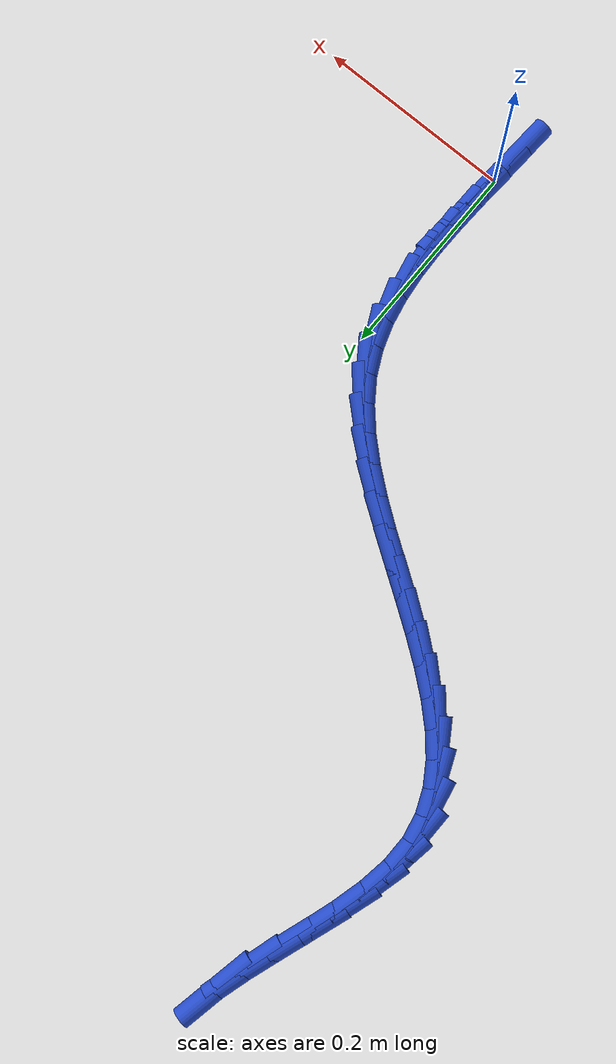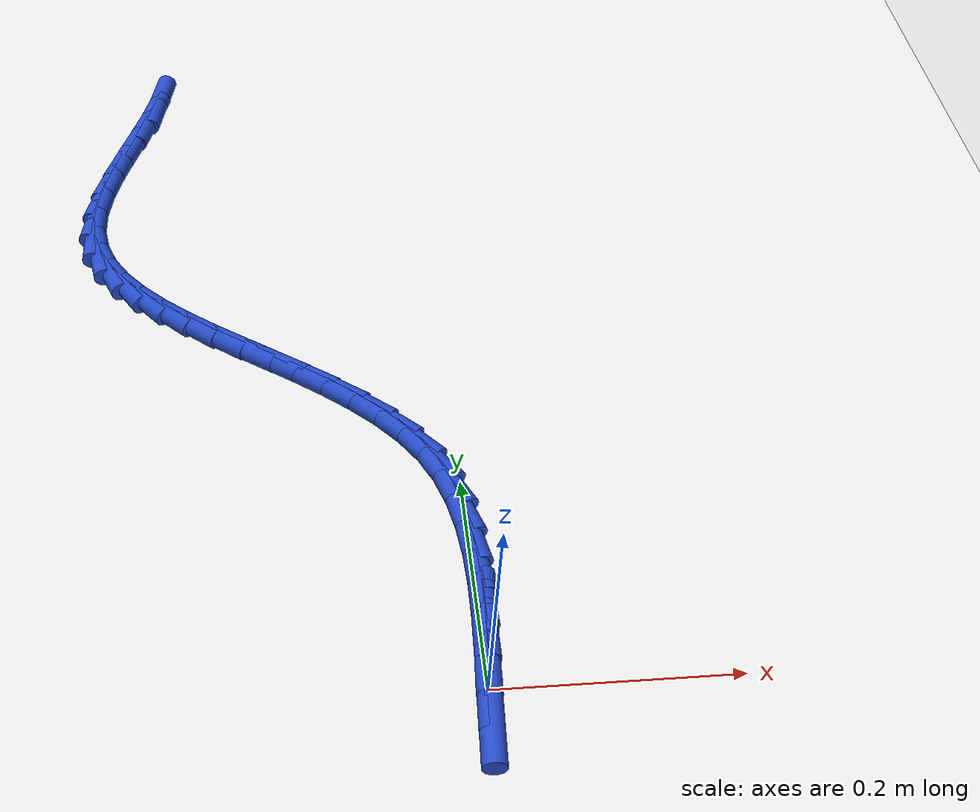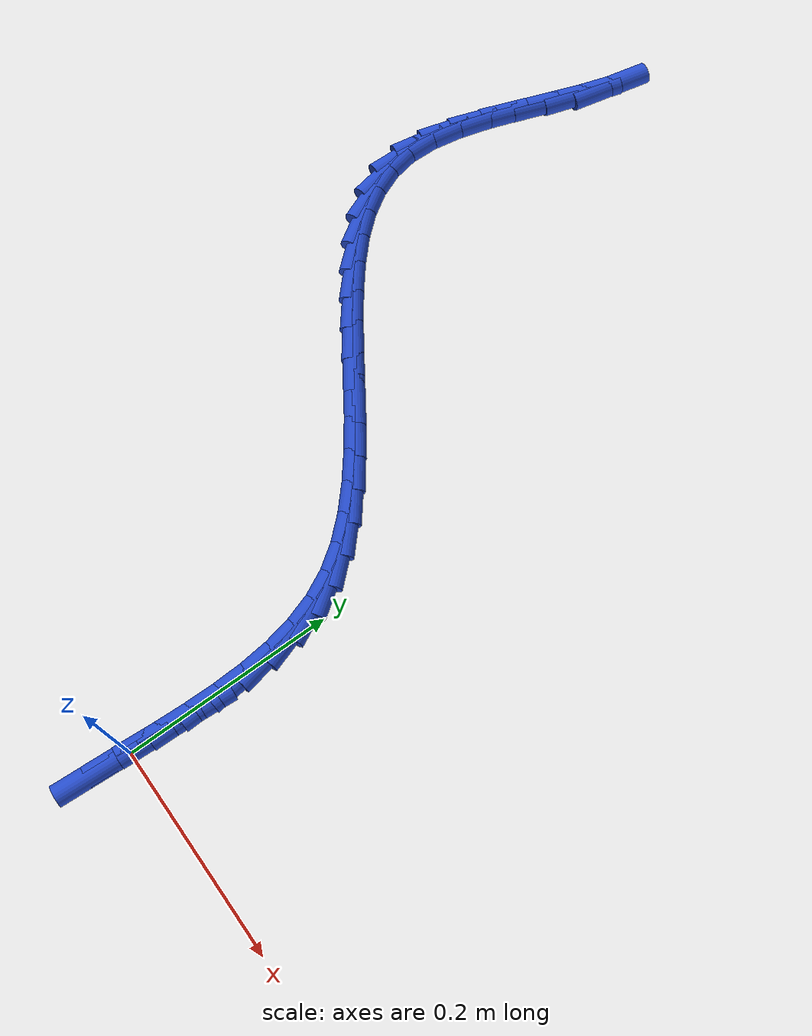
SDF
<sdf version="1.6">
 <world name="default">
  <model name="ground_plane">
   <static>1</static>
   <link name="link">
    <collision name="collision">
     <geometry><plane><normal>0 0 1</normal><size>100 100</size></plane></geometry>
     <surface><friction><ode><mu>100</mu><mu2>50</mu2></ode></friction></surface>
    </collision>
    <visual name="visual">
     <cast_shadows>0</cast_shadows>
     <geometry><plane><normal>0 0 1</normal><size>100 100</size></plane></geometry>
     <material>
      <script><uri>file://media/materials/scripts/gazebo.material</uri><name>Gazebo/WhiteGlow</name></script>
     </material>
    </visual>
   </link>
  </model>
  <model name="line">
   <link name="link_0">
    <pose>3.903127820947816e-18 1.3877787807814457e-17 0.01 0 1.57 1.5122501408188502</pose>
    <collision name="collision">
     <geometry><cylinder><radius>0.01</radius><length>0.08</length></cylinder></geometry>
    </collision>
    <visual name="visual">
     <material>
      <script><name>Gazebo/Blue</name><uri>file://media/materials/scripts/gazebo.material</uri></script>
     </material>
     <geometry><cylinder><radius>0.01</radius><length>0.08</length></cylinder></geometry>
    </visual>
   </link>
   <link name="link_1">
    <pose>0.0017442463922473731 0.029758608789196915 0.01 0 1.57 1.5258216991188778</pose>
    <collision name="collision">
     <geometry><cylinder><radius>0.01</radius><length>0.08</length></cylinder></geometry>
    </collision>
    <visual name="visual">
     <material>
      <script><name>Gazebo/Blue</name><uri>file://media/materials/scripts/gazebo.material</uri></script>
     </material>
     <geometry><cylinder><radius>0.01</radius><length>0.08</length></cylinder></geometry>
    </visual>
   </link>
   <link name="link_2">
    <pose>0.0030905800420535897 0.05967382646153182 0.01 0 1.57 1.556951481879732</pose>
    <collision name="collision">
     <geometry><cylinder><radius>0.01</radius><length>0.08</length></cylinder></geometry>
    </collision>
    <visual name="visual">
     <material>
      <script><name>Gazebo/Blue</name><uri>file://media/materials/scripts/gazebo.material</uri></script>
     </material>
     <geometry><cylinder><radius>0.01</radius><length>0.08</length></cylinder></geometry>
    </visual>
   </link>
   <link name="link_3">
    <pose>0.003502925631898839 0.08945525384030607 0.01 0 1.57 -1.5347827048240574</pose>
    <collision name="collision">
     <geometry><cylinder><radius>0.01</radius><length>0.08</length></cylinder></geometry>
    </collision>
    <visual name="visual">
     <material>
      <script><name>Gazebo/Blue</name><uri>file://media/materials/scripts/gazebo.material</uri></script>
     </material>
     <geometry><cylinder><radius>0.01</radius><length>0.08</length></cylinder></geometry>
    </visual>
   </link>
   <link name="link_4">
    <pose>0.0024452078442633073 0.1188124917488211 0.01 0 1.57 -1.4642331994224542</pose>
    <collision name="collision">
     <geometry><cylinder><radius>0.01</radius><length>0.08</length></cylinder></geometry>
    </collision>
    <visual name="visual">
     <material>
      <script><name>Gazebo/Blue</name><uri>file://media/materials/scripts/gazebo.material</uri></script>
     </material>
     <geometry><cylinder><radius>0.01</radius><length>0.08</length></cylinder></geometry>
    </visual>
   </link>
   <link name="link_5">
    <pose>-0.0006186486383728089 0.14745514101037832 0.01 0 1.57 -1.3706698530665402</pose>
    <collision name="collision">
     <geometry><cylinder><radius>0.01</radius><length>0.08</length></cylinder></geometry>
    </collision>
    <visual name="visual">
     <material>
      <script><name>Gazebo/Blue</name><uri>file://media/materials/scripts/gazebo.material</uri></script>
     </material>
     <geometry><cylinder><radius>0.01</radius><length>0.08</length></cylinder></geometry>
    </visual>
   </link>
   <link name="link_6">
    <pose>-0.006224719133529337 0.17509280244827907 0.01 0 1.57 -1.2523428880414997</pose>
    <collision name="collision">
     <geometry><cylinder><radius>0.01</radius><length>0.08</length></cylinder></geometry>
    </collision>
    <visual name="visual">
     <material>
      <script><name>Gazebo/Blue</name><uri>file://media/materials/scripts/gazebo.material</uri></script>
     </material>
     <geometry><cylinder><radius>0.01</radius><length>0.08</length></cylinder></geometry>
    </visual>
   </link>
   <link name="link_7">
    <pose>-0.014909078958726068 0.20143507688582474 0.01 0 1.57 -1.109749597400508</pose>
    <collision name="collision">
     <geometry><cylinder><radius>0.01</radius><length>0.08</length></cylinder></geometry>
    </collision>
    <visual name="visual">
     <material>
      <script><name>Gazebo/Blue</name><uri>file://media/materials/scripts/gazebo.material</uri></script>
     </material>
     <geometry><cylinder><radius>0.01</radius><length>0.08</length></cylinder></geometry>
    </visual>
   </link>
   <link name="link_8">
    <pose>-0.027207105350043455 0.22619189472226361 0.01 0 1.57 -0.9590329431514204</pose>
    <collision name="collision">
     <geometry><cylinder><radius>0.01</radius><length>0.08</length></cylinder></geometry>
    </collision>
    <visual name="visual">
     <material>
      <script><name>Gazebo/Blue</name><uri>file://media/materials/scripts/gazebo.material</uri></script>
     </material>
     <geometry><cylinder><radius>0.01</radius><length>0.08</length></cylinder></geometry>
    </visual>
   </link>
   <link name="link_9">
    <pose>-0.043357625138385945 0.24921319277308443 0.01 0 1.57 -0.834334397316058</pose>
    <collision name="collision">
     <geometry><cylinder><radius>0.01</radius><length>0.08</length></cylinder></geometry>
    </collision>
    <visual name="visual">
     <material>
      <script><name>Gazebo/Blue</name><uri>file://media/materials/scripts/gazebo.material</uri></script>
     </material>
     <geometry><cylinder><radius>0.01</radius><length>0.08</length></cylinder></geometry>
    </visual>
   </link>
   <link name="link_10">
    <pose>-0.06284337221791567 0.27070587200074914 0.01 0 1.57 -0.7392663352473778</pose>
    <collision name="collision">
     <geometry><cylinder><radius>0.01</radius><length>0.08</length></cylinder></geometry>
    </collision>
    <visual name="visual">
     <material>
      <script><name>Gazebo/Blue</name><uri>file://media/materials/scripts/gazebo.material</uri></script>
     </material>
     <geometry><cylinder><radius>0.01</radius><length>0.08</length></cylinder></geometry>
    </visual>
   </link>
   <link name="link_11">
    <pose>-0.0850283293911544 0.2909328977482601 0.01 0 1.57 -0.6703454896885207</pose>
    <collision name="collision">
     <geometry><cylinder><radius>0.01</radius><length>0.08</length></cylinder></geometry>
    </collision>
    <visual name="visual">
     <material>
      <script><name>Gazebo/Blue</name><uri>file://media/materials/scripts/gazebo.material</uri></script>
     </material>
     <geometry><cylinder><radius>0.01</radius><length>0.08</length></cylinder></geometry>
    </visual>
   </link>
   <link name="link_12">
    <pose>-0.10927647946062406 0.31015723535861955 0.01 0 1.57 -0.6239815044802735</pose>
    <collision name="collision">
     <geometry><cylinder><radius>0.01</radius><length>0.08</length></cylinder></geometry>
    </collision>
    <visual name="visual">
     <material>
      <script><name>Gazebo/Blue</name><uri>file://media/materials/scripts/gazebo.material</uri></script>
     </material>
     <geometry><cylinder><radius>0.01</radius><length>0.08</length></cylinder></geometry>
    </visual>
   </link>
   <link name="link_13">
    <pose>-0.13495180522884656 0.3286418501748298 0.01 0 1.57 -0.5974517177394485</pose>
    <collision name="collision">
     <geometry><cylinder><radius>0.01</radius><length>0.08</length></cylinder></geometry>
    </collision>
    <visual name="visual">
     <material>
      <script><name>Gazebo/Blue</name><uri>file://media/materials/scripts/gazebo.material</uri></script>
     </material>
     <geometry><cylinder><radius>0.01</radius><length>0.08</length></cylinder></geometry>
    </visual>
   </link>
   <link name="link_14">
    <pose>-0.16141828949834358 0.34664970753989316 0.01 0 1.57 -0.5892060763753333</pose>
    <collision name="collision">
     <geometry><cylinder><radius>0.01</radius><length>0.08</length></cylinder></geometry>
    </collision>
    <visual name="visual">
     <material>
      <script><name>Gazebo/Blue</name><uri>file://media/materials/scripts/gazebo.material</uri></script>
     </material>
     <geometry><cylinder><radius>0.01</radius><length>0.08</length></cylinder></geometry>
    </visual>
   </link>
   <link name="link_15">
    <pose>-0.18803991507163711 0.36444377279681206 0.01 0 1.57 -0.5989409986802355</pose>
    <collision name="collision">
     <geometry><cylinder><radius>0.01</radius><length>0.08</length></cylinder></geometry>
    </collision>
    <visual name="visual">
     <material>
      <script><name>Gazebo/Blue</name><uri>file://media/materials/scripts/gazebo.material</uri></script>
     </material>
     <geometry><cylinder><radius>0.01</radius><length>0.08</length></cylinder></geometry>
    </visual>
   </link>
   <link name="link_16">
    <pose>-0.21418066475124908 0.3822870112885886 0.01 0 1.57 -0.6276507489593236</pose>
    <collision name="collision">
     <geometry><cylinder><radius>0.01</radius><length>0.08</length></cylinder></geometry>
    </collision>
    <visual name="visual">
     <material>
      <script><name>Gazebo/Blue</name><uri>file://media/materials/scripts/gazebo.material</uri></script>
     </material>
     <geometry><cylinder><radius>0.01</radius><length>0.08</length></cylinder></geometry>
    </visual>
   </link>
   <link name="link_17">
    <pose>-0.23920452133970124 0.4004423883582253 0.01 0 1.57 -0.6777136943184412</pose>
    <collision name="collision">
     <geometry><cylinder><radius>0.01</radius><length>0.08</length></cylinder></geometry>
    </collision>
    <visual name="visual">
     <material>
      <script><name>Gazebo/Blue</name><uri>file://media/materials/scripts/gazebo.material</uri></script>
     </material>
     <geometry><cylinder><radius>0.01</radius><length>0.08</length></cylinder></geometry>
    </visual>
   </link>
   <link name="link_18">
    <pose>-0.26247546763951546 0.41917286934872444 0.01 0 1.57 -0.7529386144405495</pose>
    <collision name="collision">
     <geometry><cylinder><radius>0.01</radius><length>0.08</length></cylinder></geometry>
    </collision>
    <visual name="visual">
     <material>
      <script><name>Gazebo/Blue</name><uri>file://media/materials/scripts/gazebo.material</uri></script>
     </material>
     <geometry><cylinder><radius>0.01</radius><length>0.08</length></cylinder></geometry>
    </visual>
   </link>
   <link name="link_19">
    <pose>-0.2833574864532136 0.4387414196030882 0.01 0 1.57 -0.858270572618717</pose>
    <collision name="collision">
     <geometry><cylinder><radius>0.01</radius><length>0.08</length></cylinder></geometry>
    </collision>
    <visual name="visual">
     <material>
      <script><name>Gazebo/Blue</name><uri>file://media/materials/scripts/gazebo.material</uri></script>
     </material>
     <geometry><cylinder><radius>0.01</radius><length>0.08</length></cylinder></geometry>
    </visual>
   </link>
   <link name="link_20">
    <pose>-0.30121456058331764 0.45941100446431904 0.01 0 1.57 -0.998442633605758</pose>
    <collision name="collision">
     <geometry><cylinder><radius>0.01</radius><length>0.08</length></cylinder></geometry>
    </collision>
    <visual name="visual">
     <material>
      <script><name>Gazebo/Blue</name><uri>file://media/materials/scripts/gazebo.material</uri></script>
     </material>
     <geometry><cylinder><radius>0.01</radius><length>0.08</length></cylinder></geometry>
    </visual>
   </link>
   <link name="link_21">
    <pose>-0.31541067283234936 0.4814445892754193 0.01 0 1.57 -1.1745450551258132</pose>
    <collision name="collision">
     <geometry><cylinder><radius>0.01</radius><length>0.08</length></cylinder></geometry>
    </collision>
    <visual name="visual">
     <material>
      <script><name>Gazebo/Blue</name><uri>file://media/materials/scripts/gazebo.material</uri></script>
     </material>
     <geometry><cylinder><radius>0.01</radius><length>0.08</length></cylinder></geometry>
    </visual>
   </link>
   <link name="link_22">
    <pose>-0.32530980600283055 0.505105139379391 0.01 0 1.57 -1.3788241931452603</pose>
    <collision name="collision">
     <geometry><cylinder><radius>0.01</radius><length>0.08</length></cylinder></geometry>
    </collision>
    <visual name="visual">
     <material>
      <script><name>Gazebo/Blue</name><uri>file://media/materials/scripts/gazebo.material</uri></script>
     </material>
     <geometry><cylinder><radius>0.01</radius><length>0.08</length></cylinder></geometry>
    </visual>
   </link>
   <link name="link_23">
    <pose>-0.3302759428972832 0.530655620119237 0.01 0 1.57 1.5558913883083831</pose>
    <collision name="collision">
     <geometry><cylinder><radius>0.01</radius><length>0.08</length></cylinder></geometry>
    </collision>
    <visual name="visual">
     <material>
      <script><name>Gazebo/Blue</name><uri>file://media/materials/scripts/gazebo.material</uri></script>
     </material>
     <geometry><cylinder><radius>0.01</radius><length>0.08</length></cylinder></geometry>
    </visual>
   </link>
   <link name="link_24">
    <pose>-0.3298643063111231 0.5582710378819528 0.01 0 1.57 1.4017919769859504</pose>
    <collision name="collision">
     <geometry><cylinder><radius>0.01</radius><length>0.08</length></cylinder></geometry>
    </collision>
    <visual name="visual">
     <material>
      <script><name>Gazebo/Blue</name><uri>file://media/materials/scripts/gazebo.material</uri></script>
     </material>
     <geometry><cylinder><radius>0.01</radius><length>0.08</length></cylinder></geometry>
    </visual>
   </link>
   <link name="link_25">
    <pose>-0.32486710538476343 0.5875574593372003 0.01 0 1.57 1.3037899901988474</pose>
    <collision name="collision">
     <geometry><cylinder><radius>0.01</radius><length>0.08</length></cylinder></geometry>
    </collision>
    <visual name="visual">
     <material>
      <script><name>Gazebo/Blue</name><uri>file://media/materials/scripts/gazebo.material</uri></script>
     </material>
     <geometry><cylinder><radius>0.01</radius><length>0.08</length></cylinder></geometry>
    </visual>
   </link>
   <link name="link_26">
    <pose>-0.31656875961875974 0.6178945638349262 0.01 0 1.57 1.2473448263265035</pose>
    <collision name="collision">
     <geometry><cylinder><radius>0.01</radius><length>0.08</length></cylinder></geometry>
    </collision>
    <visual name="visual">
     <material>
      <script><name>Gazebo/Blue</name><uri>file://media/materials/scripts/gazebo.material</uri></script>
     </material>
     <geometry><cylinder><radius>0.01</radius><length>0.08</length></cylinder></geometry>
    </visual>
   </link>
   <link name="link_27">
    <pose>-0.30625495012892845 0.6486614504575322 0.01 0 1.57 1.2241896860069106</pose>
    <collision name="collision">
     <geometry><cylinder><radius>0.01</radius><length>0.08</length></cylinder></geometry>
    </collision>
    <visual name="visual">
     <material>
      <script><name>Gazebo/Blue</name><uri>file://media/materials/scripts/gazebo.material</uri></script>
     </material>
     <geometry><cylinder><radius>0.01</radius><length>0.08</length></cylinder></geometry>
    </visual>
   </link>
   <link name="link_28">
    <pose>-0.29521135803108595 0.6792372182874196 0.01 0 1.57 1.2320164432173886</pose>
    <collision name="collision">
     <geometry><cylinder><radius>0.01</radius><length>0.08</length></cylinder></geometry>
    </collision>
    <visual name="visual">
     <material>
      <script><name>Gazebo/Blue</name><uri>file://media/materials/scripts/gazebo.material</uri></script>
     </material>
     <geometry><cylinder><radius>0.01</radius><length>0.08</length></cylinder></geometry>
    </visual>
   </link>
   <link name="link_29">
    <pose>-0.2847236644410487 0.7090009664069894 0.01 0 1.57 1.2745904224871125</pose>
    <collision name="collision">
     <geometry><cylinder><radius>0.01</radius><length>0.08</length></cylinder></geometry>
    </collision>
    <visual name="visual">
     <material>
      <script><name>Gazebo/Blue</name><uri>file://media/materials/scripts/gazebo.material</uri></script>
     </material>
     <geometry><cylinder><radius>0.01</radius><length>0.08</length></cylinder></geometry>
    </visual>
   </link>
   <link name="link_30">
    <pose>-0.2760775504746334 0.7373317938986432 0.01 0 1.57 1.3637792754838602</pose>
    <collision name="collision">
     <geometry><cylinder><radius>0.01</radius><length>0.08</length></cylinder></geometry>
    </collision>
    <visual name="visual">
     <material>
      <script><name>Gazebo/Blue</name><uri>file://media/materials/scripts/gazebo.material</uri></script>
     </material>
     <geometry><cylinder><radius>0.01</radius><length>0.08</length></cylinder></geometry>
    </visual>
   </link>
   <link name="link_279">
    <pose>-0.0017274650709142656 -0.02936856536735676 0.01 0 1.57 1.5120438158251692</pose>
    <collision name="collision">
     <geometry><cylinder><radius>0.01</radius><length>0.08</length></cylinder></geometry>
    </collision>
    <visual name="visual">
     <material>
      <script><name>Gazebo/Blue</name><uri>file://media/materials/scripts/gazebo.material</uri></script>
     </material>
     <geometry><cylinder><radius>0.01</radius><length>0.08</length></cylinder></geometry>
    </visual>
   </link>
   <link name="link_280">
    <pose>3.903127820947816e-18 1.3877787807814457e-17 0.01 0 1.57 1.508305543854158</pose>
    <collision name="collision">
     <geometry><cylinder><radius>0.01</radius><length>0.08</length></cylinder></geometry>
    </collision>
    <visual name="visual">
     <material>
      <script><name>Gazebo/Blue</name><uri>file://media/materials/scripts/gazebo.material</uri></script>
     </material>
     <geometry><cylinder><radius>0.01</radius><length>0.08</length></cylinder></geometry>
    </visual>
   </link>
   <link name="link_281">
    <pose>0.0018656276459929322 0.02981557342719339 0.01 0 1.57 1.4984807228523687</pose>
    <collision name="collision">
     <geometry><cylinder><radius>0.01</radius><length>0.08</length></cylinder></geometry>
    </collision>
    <visual name="visual">
     <material>
      <script><name>Gazebo/Blue</name><uri>file://media/materials/scripts/gazebo.material</uri></script>
     </material>
     <geometry><cylinder><radius>0.01</radius><length>0.08</length></cylinder></geometry>
    </visual>
   </link>
   <link name="link_282">
    <pose>0.0040616300720180964 0.06012954356550422 0.01 0 1.57 1.5033507865137545</pose>
    <collision name="collision">
     <geometry><cylinder><radius>0.01</radius><length>0.08</length></cylinder></geometry>
    </collision>
    <visual name="visual">
     <material>
      <script><name>Gazebo/Blue</name><uri>file://media/materials/scripts/gazebo.material</uri></script>
     </material>
     <geometry><cylinder><radius>0.01</radius><length>0.08</length></cylinder></geometry>
    </visual>
   </link>
  </model>
 </world>
</sdf>
